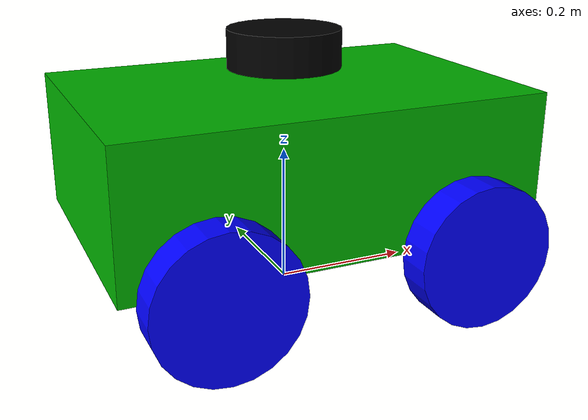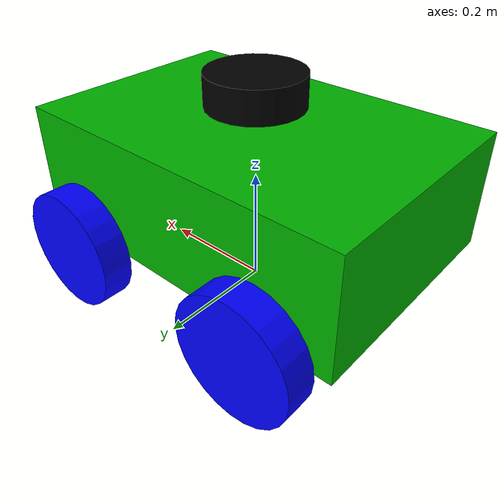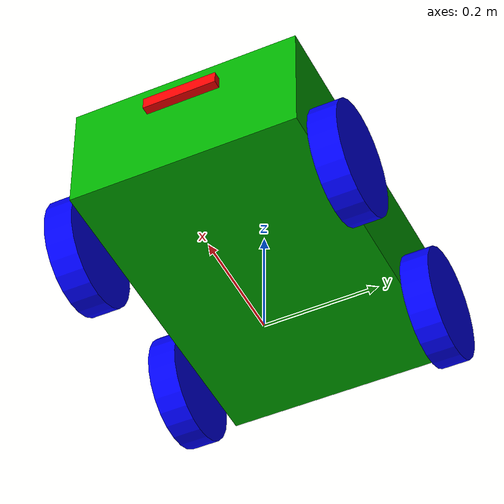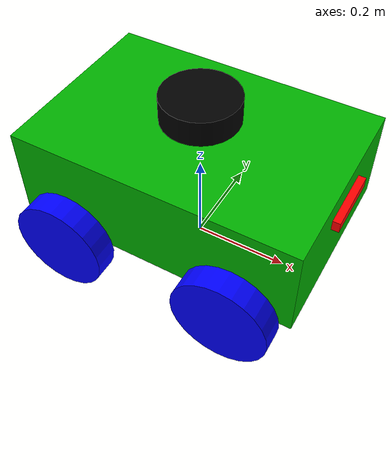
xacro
<?xml version="1.0"?>
<robot xmlns:xacro="http://www.ros.org/wiki/xacro" name="roboct">

  <!-- Materials -->
  <material name="green">
    <color rgba="0.0 0.7 0.0 1.0"/>
  </material>
  <material name="blue">
    <color rgba="0.0 0.0 1.0 1.0"/>
  </material>
  <material name="red">
    <color rgba="1.0 0.0 0.0 1.0"/>
  </material>
  <material name="white">
    <color rgba="1.0 1.0 1.0 1.0"/>
  </material>
  <material name="black">
    <color rgba="0.0 0.0 0.0 1.0"/>
  </material>

  <!-- Inertia Macros -->
  <xacro:macro name="box_inertia" params="m w h d">
    <inertial>
      <origin xyz="0 0 0.0358" rpy="0 0 0"/>
      <mass value="${m}"/>
      <inertia ixx="${(m/12) * (h*h + d*d)}" ixy="0.0" ixz="0.0" iyy="${(m/12) * (w*w + d*d)}" iyz="0.0" izz="${(m/12) * (w*w + h*h)}"/>
    </inertial>
  </xacro:macro>

  <xacro:macro name="cylinder_inertia" params="m r h">
    <inertial>
      <mass value="${m}"/>
      <inertia ixx="${m*(3*r*r+h*h)/12}" ixy="0" ixz="0" iyy="${m*(3*r*r+h*h)/12}" iyz="0" izz="${m*r*r/2}"/>
    </inertial>
  </xacro:macro>

  <!-- Base Footprint -->
  <link name="base_footprint"></link>

  <!-- Base Link -->
  <link name="base_link">
    <visual>
      <geometry>
        <box size="0.6 0.4 0.2"/>
      </geometry>
      <origin xyz="0.0 0.0 0.05" rpy="0.0 0.0 0.0"/>
      <material name="green"/>
    </visual>
    <collision>
      <geometry>
        <box size="0.6 0.4 0.2"/>
      </geometry>
      <origin xyz="0.0 0.0 0.05" rpy="0.0 0.0 0.0"/>
    </collision>
    <xacro:box_inertia m="3.5" w="0.4" d="0.6" h="0.2"/>
  </link>

  <joint name="base_body_footprint_joint" type="fixed">
    <parent link="base_footprint"/>
    <child link="base_link"/>
    <origin xyz="0.0 0.0 0.15" rpy="0.0 0.0 0.0"/>
  </joint>

  <!-- LIDAR -->
  <link name="lidar_link">
    <visual>
      <geometry>
        <cylinder radius="0.0808" length="0.055"/>
      </geometry>
      <material name="black"/>
    </visual>
    <collision>
      <geometry>
        <cylinder radius="0.0808" length="0.055"/>
      </geometry>
    </collision>
    <xacro:cylinder_inertia m="1.0" r="0.0808" h="0.055"/>
  </link>

  <joint name="base_lidar" type="fixed">
    <origin xyz="0.0 0.0 0.2" rpy="0 0 0"/>
    <parent link="base_link"/>
    <child link="lidar_link"/>
  </joint>

  <gazebo reference="base_lidar">
    <preserveFixedJoint>true</preserveFixedJoint>
  </gazebo>

  <gazebo reference="lidar_link">
    <sensor name="lidar" type="gpu_lidar">
      <ignition_frame_id>lidar_link</ignition_frame_id>
      <topic>/scan</topic>
      <always_on>true</always_on>
      <visualize>true</visualize>
      <update_rate>10</update_rate>
      <ray>
        <scan>
          <horizontal>
            <samples>360</samples>
            <resolution>1.0</resolution>
            <min_angle>-3.14</min_angle>
            <max_angle>3.14</max_angle>
          </horizontal>
        </scan>
        <range>
          <min>0.03</min>
          <max>10</max>
          <resolution>0.015</resolution>
        </range>
        <noise>
          <type>gaussian</type>
          <mean>0.0</mean>
          <stddev>0.01</stddev>
        </noise>
      </ray>
    </sensor>
  </gazebo>

  <!-- Wheels -->
  <xacro:macro name="wheel" params="name xyz rpy">
    <link name="${name}">
      <visual>
        <geometry>
          <cylinder radius="0.1" length="0.05"/>
        </geometry>
        <origin xyz="0.0 0.0 0.0" rpy="${rpy}"/>
        <material name="blue"/>
      </visual>
      <collision>
        <geometry>
          <cylinder radius="0.1" length="0.05"/>
        </geometry>
        <origin xyz="0.0 0.0 0.0" rpy="${rpy}"/>
        <surface>
          <friction>
            <ode>
              <mu>1.0</mu>
              <mu2>1.0</mu2>
            </ode>
          </friction>
        </surface>
      </collision>
      <xacro:cylinder_inertia m="0.05" r="0.1" h="0.05"/>
    </link>
    <joint name="${name}_joint" type="continuous">
      <origin xyz="${xyz}" rpy="0 0 0"/>
      <parent link="base_link"/>
      <child link="${name}"/>
      <axis xyz="0.0 1.0 0.0"/>
      <dynamics damping="0.2"/>
    </joint>
  </xacro:macro>

  <xacro:wheel name="rr_wheel" xyz="-0.18 -0.233 -0.05" rpy="1.57 0 0"/>
  <xacro:wheel name="fr_wheel" xyz="0.18 -0.233 -0.05" rpy="1.57 0 0"/>
  <xacro:wheel name="fl_wheel" xyz="0.18 0.233 -0.05" rpy="1.57 0 0"/>
  <xacro:wheel name="rl_wheel" xyz="-0.18 0.233 -0.05" rpy="1.57 0 0"/>

  <!-- IMU -->
  <link name="imu_link"/>

  <joint name="imu_joint" type="fixed">
    <parent link="base_link"/>
    <child link="imu_link"/>
    <origin xyz="0 0 0.01" rpy="0 0 0"/>
  </joint>

  <gazebo reference="imu_link">
    <sensor name="imu_sensor" type="imu">
      <ignition_frame_id>imu_link</ignition_frame_id>
      <plugin filename="ignition-gazebo-imu-system" name="ignition::gazebo::systems::Imu"/>
      <topic>imu</topic>
      <always_on>true</always_on>
      <update_rate>100</update_rate>
      <visualize>true</visualize>
      <imu>
        <angular_velocity>
          <x>
            <noise type="gaussian">
              <mean>0.0</mean>
              <stddev>2e-4</stddev>
              <bias_mean>0.0000075</bias_mean>
              <bias_stddev>0.0000008</bias_stddev>
            </noise>
          </x>
          <y>
            <noise type="gaussian">
              <mean>0.0</mean>
              <stddev>2e-4</stddev>
              <bias_mean>0.0000075</bias_mean>
              <bias_stddev>0.0000008</bias_stddev>
            </noise>
          </y>
          <z>
            <noise type="gaussian">
              <mean>0.0</mean>
              <stddev>2e-4</stddev>
              <bias_mean>0.0000075</bias_mean>
              <bias_stddev>0.0000008</bias_stddev>
            </noise>
          </z>
        </angular_velocity>
        <linear_acceleration>
          <x>
            <noise type="gaussian">
              <mean>0.0</mean>
              <stddev>1.7e-2</stddev>
              <bias_mean>0.1</bias_mean>
              <bias_stddev>0.001</bias_stddev>
            </noise>
          </x>
          <y>
            <noise type="gaussian">
              <mean>0.0</mean>
              <stddev>1.7e-2</stddev>
              <bias_mean>0.1</bias_mean>
              <bias_stddev>0.001</bias_stddev>
            </noise>
          </y>
          <z>
            <noise type="gaussian">
              <mean>0.0</mean>
              <stddev>1.7e-2</stddev>
              <bias_mean>0.1</bias_mean>
              <bias_stddev>0.001</bias_stddev>
            </noise>
          </z>
        </linear_acceleration>
      </imu>
    </sensor>
  </gazebo>

  <!-- ROS2 Control -->
  <ros2_control name="IgnitionSystem" type="system">
    <hardware>
      <plugin>gz_ros2_control/GazeboSimSystem</plugin>
    </hardware>
    <joint name="fr_wheel_joint">
      <command_interface name="velocity">
        <param name="min">-5</param>
        <param name="max">5</param>
      </command_interface>
      <state_interface name="position"/>
      <state_interface name="velocity"/>
      <state_interface name="effort"/>
    </joint>
    <joint name="rr_wheel_joint">
      <command_interface name="velocity">
        <param name="min">-5</param>
        <param name="max">5</param>
      </command_interface>
      <state_interface name="position"/>
      <state_interface name="velocity"/>
      <state_interface name="effort"/>
    </joint>
    <joint name="fl_wheel_joint">
      <command_interface name="velocity">
        <param name="min">-5</param>
        <param name="max">5</param>
      </command_interface>
      <state_interface name="position"/>
      <state_interface name="velocity"/>
      <state_interface name="effort"/>
    </joint>
    <joint name="rl_wheel_joint">
      <command_interface name="velocity">
        <param name="min">-5</param>
        <param name="max">5</param>
      </command_interface>
      <state_interface name="position"/>
      <state_interface name="velocity"/>
      <state_interface name="effort"/>
    </joint>
     <sensor name="imu_sensor">
    <state_interface name="orientation.x"/>
    <state_interface name="orientation.y"/>
    <state_interface name="orientation.z"/>
    <state_interface name="orientation.w"/>
    <state_interface name="angular_velocity.x"/>
    <state_interface name="angular_velocity.y"/>
    <state_interface name="angular_velocity.z"/>
    <state_interface name="linear_acceleration.x"/>
    <state_interface name="linear_acceleration.y"/>
    <state_interface name="linear_acceleration.z"/>
  </sensor>
  </ros2_control>

  <gazebo>
    <plugin filename="gz_ros2_control-system" name="gz_ros2_control::GazeboSimROS2ControlPlugin">
      <parameters>$(find testbot)/config/4w_diff_drive_controller_velocity.yaml</parameters>
    </plugin>
  </gazebo>

  <!-- Camera -->
  <link name="camera_link">
    <visual>
      <origin xyz="0 0 0" rpy="0 0 0"/>
      <geometry>
        <box size="0.015 0.130 0.022"/>
      </geometry>
      <material name="red"/>
    </visual>
    <collision>
      <origin xyz="0 0 0" rpy="0 0 0"/>
      <geometry>
        <box size="0.015 0.130 0.022"/>
      </geometry>
    </collision>
    <inertial>
      <mass value="0.035"/>
      <inertia ixx="1.8e-6" iyy="4.9e-5" izz="5.0e-5" ixy="0" ixz="0" iyz="0"/>
    </inertial>

  </link>

  <joint name="camera_joint" type="fixed">
    <parent link="base_link"/>
    <child link="camera_link"/>
    <origin xyz="0.309 0 0.1" rpy="0 0 0"/>
    <axis xyz="0 1 0"/>
  </joint>

  <link name="camera_frame"/>

  <joint name="camera_frame_joint" type="fixed">
    <origin xyz="0 0 0" rpy="${-pi/2} 0 ${-pi/2}"/>
    <parent link="camera_link"/>
    <child link="camera_frame"/>
  </joint>

  <gazebo reference="camera_link">
    <sensor name="camera" type="camera">
      <camera>
        <horizontal_fov>1.047</horizontal_fov>
        <image>
          <width>320</width>
          <height>240</height>
        </image>
        <clip>
          <near>0.1</near>
          <far>20</far>
        </clip>
        <noise>
          <type>gaussian</type>
          <mean>0.0</mean>
          <stddev>0.007</stddev>
        </noise>
        <optical_frame_id>camera_frame</optical_frame_id>
        <camera_info_topic>camera_info</camera_info_topic>
      </camera>
      <always_on>1</always_on>
      <update_rate>10</update_rate>
      <visualize>true</visualize>
      <topic>/robot_cam</topic>
      <enable_metrics>true</enable_metrics>
    </sensor>
  </gazebo>

</robot>
